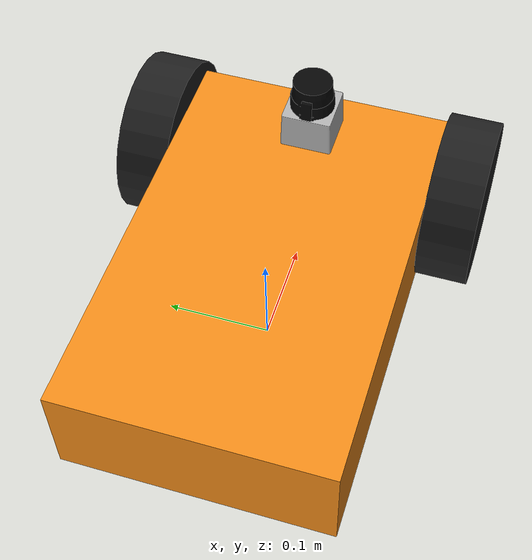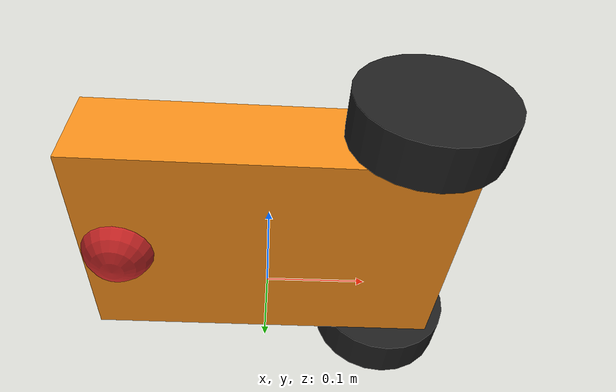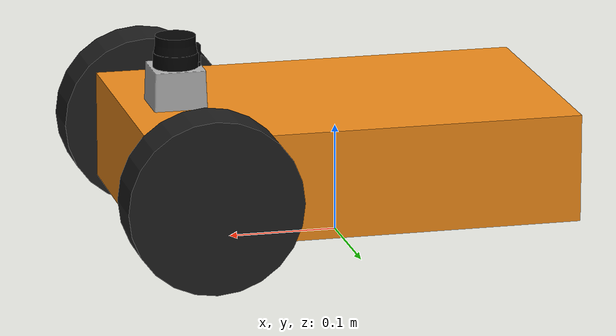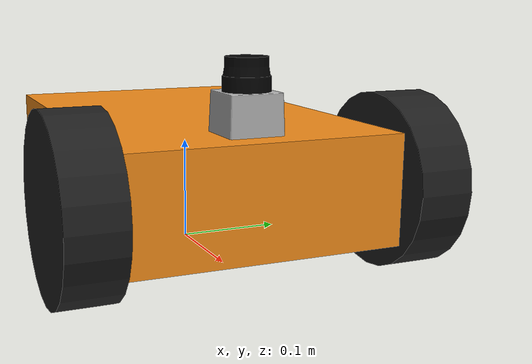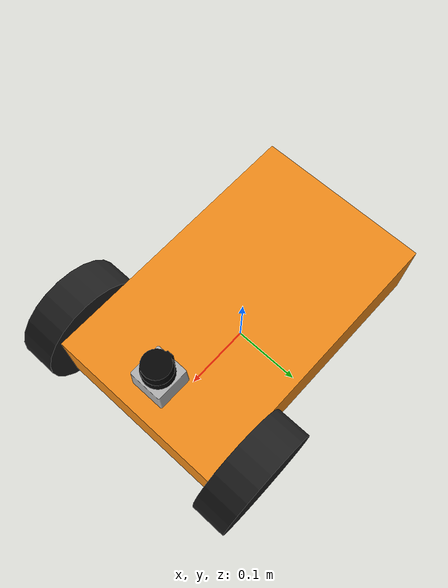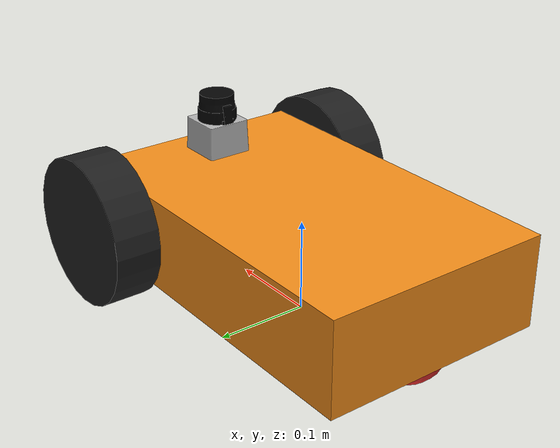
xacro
<?xml version='1.0'?>

<robot name="myrobot" xmlns:xacro="http://www.ros.org/wiki/xacro">

    <xacro:property name="PI" value="3.1415926535897931"/>

    <xacro:property name="chassisHeight" value="0.1"/>
    <xacro:property name="chassisLength" value="0.4"/>
    <xacro:property name="chassisWidth" value="0.25"/>
    <xacro:property name="chassisMass" value="50"/>

    <xacro:property name="casterRadius" value="0.04"/>
    <xacro:property name="casterMass" value="5"/>

    <xacro:property name="wheelWidth" value="0.05"/>
    <xacro:property name="wheelRadius" value="0.08"/>
    <xacro:property name="wheelPos" value="0.05"/>
    <xacro:property name="wheelMass" value="5"/>

    <xacro:property name="cameraSize" value="0.07"/>
    <xacro:property name="cameraMass" value="0.1"/>

    <xacro:include filename="$(find mybot_description)/urdf/mybot.gazebo" />
    <xacro:include filename="$(find mybot_description)/urdf/materials.xacro" />
    <xacro:include filename="$(find mybot_description)/urdf/macros.xacro" />

    <link name="footprint" />

    <joint name="base_joint" type="fixed">
        <parent link="footprint"/>
        <child link="chassis"/>
    </joint>

    <link name="chassis">
        <collision>
            <origin xyz="0 0 ${wheelRadius}" rpy="0 0 0"/>
            <geometry>
                <box size="${chassisLength} ${chassisWidth} ${chassisHeight}"/>
            </geometry>
        </collision>
        <visual>
            <origin xyz="0 0 ${wheelRadius}" rpy="0 0 0"/>
            <geometry>
                <box size="${chassisLength} ${chassisWidth} ${chassisHeight}"/>
            </geometry>
            <material name="orange"/>
        </visual>
        <inertial>
            <origin xyz="0 0 ${wheelRadius}" rpy="0 0 0"/>
            <mass value="${chassisMass}"/>
            <box_inertia m="${chassisMass}" x="${chassisLength}" y="${chassisWidth}" z="${chassisHeight}"/>
        </inertial>
    </link>

    <joint name="fixed" type="fixed">
        <origin xyz="0 0 ${casterRadius-chassisHeight+wheelRadius}" rpy="0 0 0"/>
        <parent link="chassis"/>
        <child link="caster_wheel"/>
    </joint>

    <link name="caster_wheel">
        <collision>
            <origin xyz="${casterRadius-chassisLength/2} 0 ${casterRadius-chassisHeight+wheelRadius}" rpy="0 0 0"/>
            <geometry>
                <sphere radius="${casterRadius}"/>
            </geometry>
        </collision>
        <visual>
            <origin xyz="${casterRadius-chassisLength/2} 0 ${casterRadius-chassisHeight+wheelRadius}" rpy="0 0 0"/>
            <geometry>
                <sphere radius="${casterRadius}"/>
            </geometry>
            <material name="red"/>
        </visual>
        <inertial>
            <origin xyz="${casterRadius-chassisLength/2} 0 ${casterRadius-chassisHeight+wheelRadius}" rpy="0 0 0"/>
            <mass value="${casterMass}"/>
            <sphere_inertia m="${casterMass}" r="${casterRadius}"/>
        </inertial>
    </link>

    <link name="left_wheel">
        <collision name="collision">
            <origin xyz="0 0 0" rpy="0 ${PI/2} ${PI/2}"/>
            <geometry>
                <cylinder radius="${wheelRadius}" length="${wheelWidth}"/>
            </geometry>
        </collision>
        <visual name="left_wheel_visual">
            <origin xyz="0 0 0" rpy="0 ${PI/2} ${PI/2}"/>
            <geometry>
                <cylinder radius="${wheelRadius}" length="${wheelWidth}"/>
            </geometry>
        </visual>
        <inertial>
            <origin xyz="0 0 0" rpy="0 ${PI/2} ${PI/2}"/>
            <mass value="${wheelMass}"/>
            <cylinder_inertia m="${wheelMass}" r="${wheelRadius}" h="${wheelWidth}"/>
        </inertial>
    </link>

    <link name="right_wheel">
        <collision name="collision">
            <origin xyz="0 0 0" rpy="0 ${PI/2} ${PI/2}"/>
            <geometry>
                <cylinder radius="${wheelRadius}" length="${wheelWidth}"/>
            </geometry>
        </collision>
        <visual name="right_wheel_visual">
            <origin xyz="0 0 0" rpy="0 ${PI/2} ${PI/2}"/>
            <geometry>
                <cylinder radius="${wheelRadius}" length="${wheelWidth}"/>
            </geometry>
        </visual>
        <inertial>
            <origin xyz="0 0 0" rpy="0 ${PI/2} ${PI/2}"/>
            <mass value="${wheelMass}"/>
            <cylinder_inertia m="${wheelMass}" r="${wheelRadius}" h="${wheelWidth}"/>
        </inertial>
    </link>

    <joint type="continuous" name="left_wheel_hinge">
        <origin xyz="${-wheelPos+chassisLength/2} ${wheelWidth/2+chassisWidth/2} ${wheelRadius}" rpy="0 0 0" />
        <child link="left_wheel"/>
        <parent link="chassis"/>
        <axis xyz="0 1 0" rpy="0 0 0"/>
        <limit effort="100" velocity="100"/>
        <joint_properties damping="0.0" friction="0.0"/>
    </joint>

    <joint type="continuous" name="right_wheel_hinge">
        <origin xyz="${-wheelPos+chassisLength/2} -${wheelWidth/2+chassisWidth/2} ${wheelRadius}" rpy="0 0 0" />
        <child link="right_wheel"/>
        <parent link="chassis"/>
        <axis xyz="0 1 0" rpy="0 0 0"/>
        <limit effort="100" velocity="100"/>
        <joint_properties damping="0.0" friction="0.0"/>
    </joint>

    <joint name="hokuyo_joint" type="fixed">
        <axis xyz="0 0 0" />
        <origin xyz="${chassisLength/2-0.05} 0 ${chassisHeight*2-0.04}" rpy="0 0 0"/>
        <parent link="chassis"/>
        <child link="hokuyo"/>
    </joint>

    <link name="hokuyo">
        <collision>
            <origin xyz="0 0 0" rpy="0 0 0"/>
            <geometry>
                <box size="${cameraSize} ${cameraSize} ${cameraSize}"/>
            </geometry>
        </collision>
        <visual>
            <origin xyz="0 0 0" rpy="0 0 0"/>
            <geometry>
                <mesh filename="package://mybot_description/meshes/hokuyo.dae"/>
            </geometry>
        </visual>
        <inertial>
            <mass value="${cameraMass}"/>
            <origin xyz="0 0 0" rpy="0 0 0"/>
            <box_inertia m="${cameraMass}" x="${cameraSize}" y="${cameraSize}" z="${cameraSize}"/>
        </inertial>
    </link>

</robot>

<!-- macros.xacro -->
<robot>
    <macro name="cylinder_inertia" params="m r h">
        <inertia  ixx="${m*(3*r*r+h*h)/12}" ixy = "0" ixz = "0"
            iyy="${m*(3*r*r+h*h)/12}" iyz = "0"
            izz="${m*r*r/2}"
            />
    </macro>

    <macro name="box_inertia" params="m x y z">
        <inertia  ixx="${m*(y*y+z*z)/12}" ixy = "0" ixz = "0"
            iyy="${m*(x*x+z*z)/12}" iyz = "0"
            izz="${m*(x*x+z*z)/12}"
            />
    </macro>

    <macro name="sphere_inertia" params="m r">
        <inertia  ixx="${2*m*r*r/5}" ixy = "0" ixz = "0"
            iyy="${2*m*r*r/5}" iyz = "0"
            izz="${2*m*r*r/5}"
            />
    </macro>

</robot>
